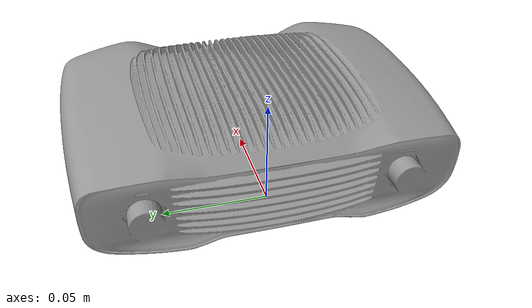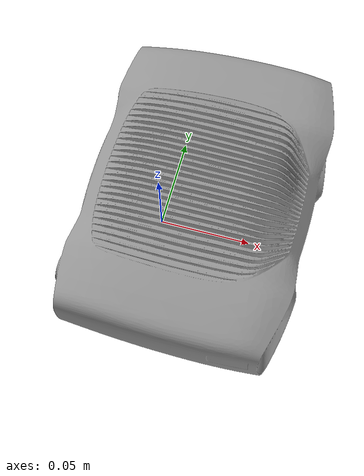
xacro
<?xml version="1.0"?>
<robot name="zivid_two_camera_robot" xmlns:xacro="http://www.ros.org/wiki/xacro">
    <!-- Specify the type of the Zivid two camera -->
    <!--   Options: ZIVID_TWO_M70, ZIVID_TWO_M100, ZIVID_TWO_PLUS_L110, ZIVID_TWO_PLUS_M60, ZIVID_TWO_PLUS_M130 -->

    <!-- Import and load Zivid camera -->
    <xacro:include filename="$(find zivid_description)/urdf/macros/zivid_two_camera.xacro"/>
    <xacro:zivid_two_camera prefix="zivid_"/>
</robot>

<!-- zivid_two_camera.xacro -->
<robot xmlns:xacro="http://ros.org/wiki/xacro">

    <!-- Zivid Properties -->
    <xacro:property name="M_PI" value="3.1415926535897931" />

    <!-- Import Rviz colors -->
    <xacro:include filename="$(find zivid_description)/urdf/zivid_materials.xacro" />

    <xacro:macro name="zivid_two_camera" params="prefix">
        <!-- Zivid Base Link -->
        <link name="${prefix}base_link">
            <!-- Visuals -->
            <visual>
                <origin xyz="-0.0395 -0.0845 0.0" rpy="${0.5*pi} 0 ${0.5*pi}"/>
                <geometry>
                    <mesh filename="package://zivid_description/meshes/visual/zivid-two-plus.stl" scale="0.001 0.001 0.001"/>
                </geometry>
                <material name="zivid_gray"/>
            </visual>

            <!-- Collisions -->
            <collision>
                <origin xyz="-0.0395 -0.0845 0.0" rpy="${0.5*pi} 0 ${0.5*pi}"/>
                <geometry>
                    <mesh filename="package://zivid_description/meshes/collision/zivid-two-plus.stl" scale="0.001 0.001 0.001"/>
                </geometry>
            </collision>
        </link>

        <!-- Zivid Optical Frame (Measurement Frame)-->
        <link name="${prefix}optical_frame"/>

        <!-- Zivid Optical (Measurement) Joint -->
        <joint name="${prefix}optical_joint" type="fixed">
            <origin xyz="0.048 0.05702 0.0295" rpy="-${0.5*pi} 0 -${0.517*pi}"/>
            <parent link="${prefix}base_link"/>
            <child link="${prefix}optical_frame"/>
        </joint>

        <link name="${prefix}projector_frame"/>

        <!-- Zivid Optical (Measurement) and Projector Joints -->

        <joint name="${prefix}projector_joint" type="fixed">
            <origin xyz="0.048 -0.05702 0.0295" rpy="-${0.5*M_PI} 0 -${0.48*M_PI}"/>
            <parent link="${prefix}base_link"/>
            <child link="${prefix}projector_frame"/>
        </joint>

    </xacro:macro>
</robot>
